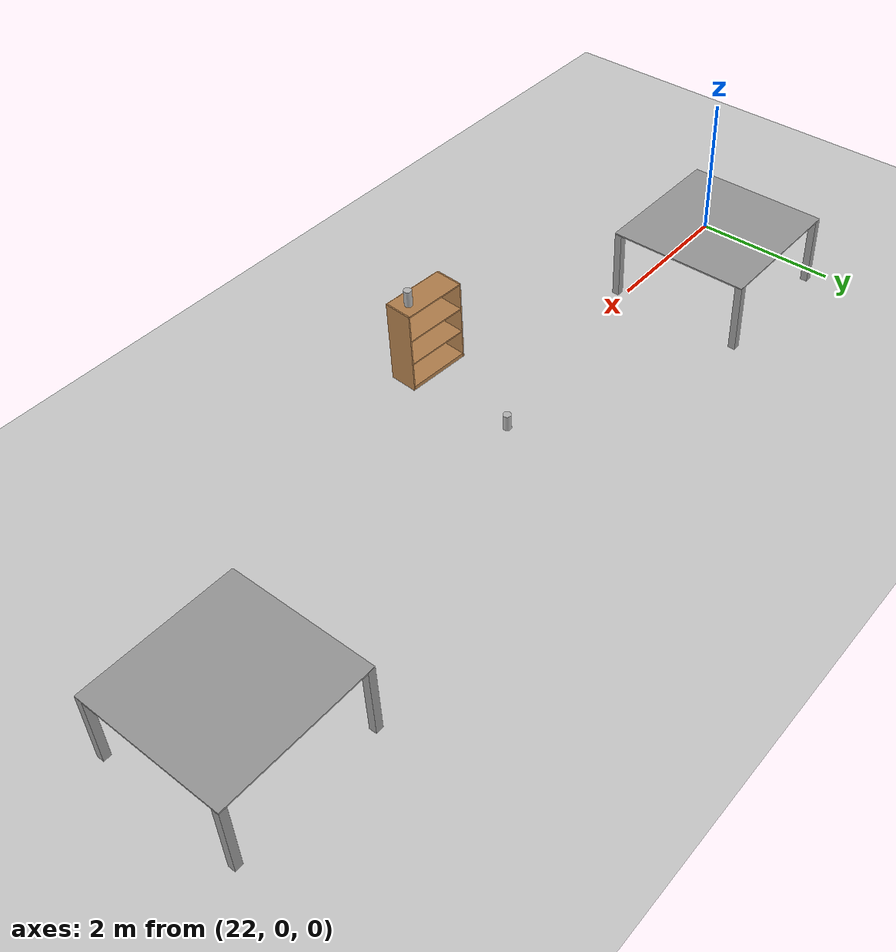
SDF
<sdf version="1.6">
 <world name="default">
  <model name="ground_plane">
   <static>1</static>
   <link name="link">
    <collision name="collision">
     <geometry><plane><normal>0 0 1</normal><size>100 100</size></plane></geometry>
     <surface>
      <contact><collide_bitmask>65535</collide_bitmask></contact>
      <friction><ode><mu>100</mu><mu2>50</mu2></ode></friction>
     </surface>
    </collision>
    <visual name="visual">
     <cast_shadows>0</cast_shadows>
     <geometry><plane><normal>0 0 1</normal><size>100 100</size></plane></geometry>
     <material>
      <script><uri>file://media/materials/scripts/gazebo.material</uri><name>Gazebo/Grey</name></script>
     </material>
    </visual>
   </link>
  </model>
  <model name="bookshelf">
   <static>1</static>
   <link name="link">
    <inertial><mass>1</mass></inertial>
    <collision name="back">
     <pose>0 0.005 0.6 0 -0 0</pose>
     <geometry><box><size>0.9 0.01 1.2</size></box></geometry>
    </collision>
    <visual name="visual1">
     <pose>0 0.005 0.6 0 -0 0</pose>
     <geometry><box><size>0.9 0.01 1.2</size></box></geometry>
     <material>
      <script><uri>file://media/materials/scripts/gazebo.material</uri><name>Gazebo/Wood</name></script>
     </material>
    </visual>
    <collision name="left_side">
     <pose>0.45 -0.195 0.6 0 -0 0</pose>
     <geometry><box><size>0.02 0.4 1.2</size></box></geometry>
    </collision>
    <visual name="visual2">
     <pose>0.45 -0.195 0.6 0 -0 0</pose>
     <geometry><box><size>0.02 0.4 1.2</size></box></geometry>
     <material>
      <script><uri>file://media/materials/scripts/gazebo.material</uri><name>Gazebo/Wood</name></script>
     </material>
    </visual>
    <collision name="right_side">
     <pose>-0.45 -0.195 0.6 0 -0 0</pose>
     <geometry><box><size>0.02 0.4 1.2</size></box></geometry>
    </collision>
    <visual name="visual3">
     <pose>-0.45 -0.195 0.6 0 -0 0</pose>
     <geometry><box><size>0.02 0.4 1.2</size></box></geometry>
     <material>
      <script><uri>file://media/materials/scripts/gazebo.material</uri><name>Gazebo/Wood</name></script>
     </material>
    </visual>
    <collision name="bottom">
     <pose>0 -0.195 0.03 0 -0 0</pose>
     <geometry><box><size>0.88 0.4 0.06</size></box></geometry>
    </collision>
    <visual name="visual4">
     <pose>0 -0.195 0.03 0 -0 0</pose>
     <geometry><box><size>0.88 0.4 0.06</size></box></geometry>
     <material>
      <script><uri>file://media/materials/scripts/gazebo.material</uri><name>Gazebo/Wood</name></script>
     </material>
    </visual>
    <collision name="top">
     <pose>0 -0.195 1.19 0 -0 0</pose>
     <geometry><box><size>0.88 0.4 0.02</size></box></geometry>
    </collision>
    <visual name="visual5">
     <pose>0 -0.195 1.19 0 -0 0</pose>
     <geometry><box><size>0.88 0.4 0.02</size></box></geometry>
     <material>
      <script><uri>file://media/materials/scripts/gazebo.material</uri><name>Gazebo/Wood</name></script>
     </material>
    </visual>
    <collision name="low_shelf">
     <pose>0 -0.195 0.43 0 -0 0</pose>
     <geometry><box><size>0.88 0.4 0.02</size></box></geometry>
    </collision>
    <visual name="visual6">
     <pose>0 -0.195 0.43 0 -0 0</pose>
     <geometry><box><size>0.88 0.4 0.02</size></box></geometry>
     <material>
      <script><uri>file://media/materials/scripts/gazebo.material</uri><name>Gazebo/Wood</name></script>
     </material>
    </visual>
    <collision name="high_shelf">
     <pose>0 -0.195 0.8 0 -0 0</pose>
     <geometry><box><size>0.88 0.4 0.02</size></box></geometry>
    </collision>
    <visual name="visual7">
     <pose>0 -0.195 0.8 0 -0 0</pose>
     <geometry><box><size>0.88 0.4 0.02</size></box></geometry>
     <material>
      <script><uri>file://media/materials/scripts/gazebo.material</uri><name>Gazebo/Wood</name></script>
     </material>
    </visual>
   </link>
   <pose>26.9058 -1.33422 0 0 -0 3.07905</pose>
  </model>
  <model name="beer">
   <link name="link">
    <pose>0 0 0.115 0 -0 0</pose>
    <inertial>
     <mass>0.39</mass>
     <inertia><ixx>0.00058</ixx><ixy>0</ixy><ixz>0</ixz><iyy>0.00058</iyy><iyz>0</iyz><izz>0.00019</izz></inertia>
    </inertial>
    <collision name="collision">
     <geometry><cylinder><radius>0.055</radius><length>0.23</length></cylinder></geometry>
    </collision>
    <visual name="visual">
     <geometry><cylinder><radius>0.055</radius><length>0.23</length></cylinder></geometry>
     <material>
      <script>
       <uri>model://beer/materials/scripts</uri>
       <uri>model://beer/materials/textures</uri>
       <name>Beer/Diffuse</name>
      </script>
     </material>
    </visual>
   </link>
   <pose>27.194 0.40875 -7e-06 -1e-06 -0 -7e-06</pose>
  </model>
  <model name="beer_0">
   <link name="link">
    <pose>0 0 0.115 0 -0 0</pose>
    <inertial>
     <mass>0.39</mass>
     <inertia><ixx>0.00058</ixx><ixy>0</ixy><ixz>0</ixz><iyy>0.00058</iyy><iyz>0</iyz><izz>0.00019</izz></inertia>
    </inertial>
    <collision name="collision">
     <geometry><cylinder><radius>0.055</radius><length>0.23</length></cylinder></geometry>
    </collision>
    <visual name="visual">
     <geometry><cylinder><radius>0.055</radius><length>0.23</length></cylinder></geometry>
     <material>
      <script>
       <uri>model://beer/materials/scripts</uri>
       <uri>model://beer/materials/textures</uri>
       <name>Beer/Diffuse</name>
      </script>
     </material>
    </visual>
   </link>
   <pose>27.1974 -1.14002 1.2 1e-06 -2.7e-05 5.3e-05</pose>
  </model>
  <model name="Table">
   <link name="link_0">
    <pose>2e-06 0 0.4 0 -0 0</pose>
    <inertial>
     <mass>1</mass>
     <inertia>
      <ixx>0.166667</ixx>
      <ixy>0</ixy>
      <ixz>0</ixz>
      <iyy>0.166667</iyy>
      <iyz>0</iyz>
      <izz>0.166667</izz>
     </inertia>
    </inertial>
    <visual name="visual">
     <geometry><box><size>2 2 0.02</size></box></geometry>
     <material>
      <lighting>1</lighting>
      <script><uri>file://media/materials/scripts/gazebo.material</uri><name>Gazebo/Grey</name></script>
      <shader type="pixel"><normal_map>__default__</normal_map></shader>
      <ambient>0.3 0.3 0.3 1</ambient>
      <diffuse>0.7 0.7 0.7 1</diffuse>
      <specular>0.01 0.01 0.01 1</specular>
      <emissive>0 0 0 1</emissive>
     </material>
    </visual>
    <collision name="collision">
     <geometry><box><size>2 2 0.02</size></box></geometry>
     <surface>
      <friction>
       <ode><mu>1</mu><mu2>1</mu2><fdir1>0 0 0</fdir1><slip1>0</slip1><slip2>0</slip2></ode>
       <torsional>
        <coefficient>1</coefficient>
        <patch_radius>0</patch_radius>
        <surface_radius>0</surface_radius>
        <use_patch_radius>1</use_patch_radius>
        <ode><slip>0</slip></ode>
       </torsional>
      </friction>
      <bounce><restitution_coefficient>0</restitution_coefficient><threshold>1e+06</threshold></bounce>
      <contact>
       <collide_without_contact>0</collide_without_contact>
       <collide_without_contact_bitmask>1</collide_without_contact_bitmask>
       <collide_bitmask>1</collide_bitmask>
       <ode>
        <soft_cfm>0</soft_cfm>
        <soft_erp>0.2</soft_erp>
        <kp>1e+13</kp>
        <kd>1</kd>
        <max_vel>0.01</max_vel>
        <min_depth>0</min_depth>
       </ode>
       <bullet>
        <split_impulse>1</split_impulse>
        <split_impulse_penetration_threshold>-0.01</split_impulse_penetration_threshold>
        <soft_cfm>0</soft_cfm>
        <soft_erp>0.2</soft_erp>
        <kp>1e+13</kp>
        <kd>1</kd>
       </bullet>
      </contact>
     </surface>
    </collision>
   </link>
   <link name="link_1">
    <pose>-0.949999 -0.95 -0.1 0 -0 0</pose>
    <inertial>
     <mass>1</mass>
     <inertia>
      <ixx>0.166667</ixx>
      <ixy>0</ixy>
      <ixz>0</ixz>
      <iyy>0.166667</iyy>
      <iyz>0</iyz>
      <izz>0.166667</izz>
     </inertia>
    </inertial>
    <visual name="visual">
     <geometry><box><size>0.1 0.1 1</size></box></geometry>
     <material>
      <lighting>1</lighting>
      <script><uri>file://media/materials/scripts/gazebo.material</uri><name>Gazebo/Grey</name></script>
      <shader type="pixel"><normal_map>__default__</normal_map></shader>
      <ambient>0.3 0.3 0.3 1</ambient>
      <diffuse>0.7 0.7 0.7 1</diffuse>
      <specular>0.01 0.01 0.01 1</specular>
      <emissive>0 0 0 1</emissive>
     </material>
    </visual>
    <collision name="collision">
     <geometry><box><size>0.1 0.1 1</size></box></geometry>
     <surface>
      <friction>
       <ode><mu>1</mu><mu2>1</mu2><fdir1>0 0 0</fdir1><slip1>0</slip1><slip2>0</slip2></ode>
       <torsional>
        <coefficient>1</coefficient>
        <patch_radius>0</patch_radius>
        <surface_radius>0</surface_radius>
        <use_patch_radius>1</use_patch_radius>
        <ode><slip>0</slip></ode>
       </torsional>
      </friction>
      <bounce><restitution_coefficient>0</restitution_coefficient><threshold>1e+06</threshold></bounce>
      <contact>
       <collide_without_contact>0</collide_without_contact>
       <collide_without_contact_bitmask>1</collide_without_contact_bitmask>
       <collide_bitmask>1</collide_bitmask>
       <ode>
        <soft_cfm>0</soft_cfm>
        <soft_erp>0.2</soft_erp>
        <kp>1e+13</kp>
        <kd>1</kd>
        <max_vel>0.01</max_vel>
        <min_depth>0</min_depth>
       </ode>
       <bullet>
        <split_impulse>1</split_impulse>
        <split_impulse_penetration_threshold>-0.01</split_impulse_penetration_threshold>
        <soft_cfm>0</soft_cfm>
        <soft_erp>0.2</soft_erp>
        <kp>1e+13</kp>
        <kd>1</kd>
       </bullet>
      </contact>
     </surface>
    </collision>
   </link>
   <link name="link_1_clone">
    <pose>0.950002 -0.95 -0.1 0 -0 0</pose>
    <inertial>
     <mass>1</mass>
     <inertia>
      <ixx>0.166667</ixx>
      <ixy>0</ixy>
      <ixz>0</ixz>
      <iyy>0.166667</iyy>
      <iyz>0</iyz>
      <izz>0.166667</izz>
     </inertia>
    </inertial>
    <visual name="visual">
     <geometry><box><size>0.1 0.1 1</size></box></geometry>
     <material>
      <lighting>1</lighting>
      <script><uri>file://media/materials/scripts/gazebo.material</uri><name>Gazebo/Grey</name></script>
      <shader type="pixel"><normal_map>__default__</normal_map></shader>
      <ambient>0.3 0.3 0.3 1</ambient>
      <diffuse>0.7 0.7 0.7 1</diffuse>
      <specular>0.01 0.01 0.01 1</specular>
      <emissive>0 0 0 1</emissive>
     </material>
    </visual>
    <collision name="collision">
     <geometry><box><size>0.1 0.1 1</size></box></geometry>
     <surface>
      <friction>
       <ode><mu>1</mu><mu2>1</mu2><fdir1>0 0 0</fdir1><slip1>0</slip1><slip2>0</slip2></ode>
       <torsional>
        <coefficient>1</coefficient>
        <patch_radius>0</patch_radius>
        <surface_radius>0</surface_radius>
        <use_patch_radius>1</use_patch_radius>
        <ode><slip>0</slip></ode>
       </torsional>
      </friction>
      <bounce><restitution_coefficient>0</restitution_coefficient><threshold>1e+06</threshold></bounce>
      <contact>
       <collide_without_contact>0</collide_without_contact>
       <collide_without_contact_bitmask>1</collide_without_contact_bitmask>
       <collide_bitmask>1</collide_bitmask>
       <ode>
        <soft_cfm>0</soft_cfm>
        <soft_erp>0.2</soft_erp>
        <kp>1e+13</kp>
        <kd>1</kd>
        <max_vel>0.01</max_vel>
        <min_depth>0</min_depth>
       </ode>
       <bullet>
        <split_impulse>1</split_impulse>
        <split_impulse_penetration_threshold>-0.01</split_impulse_penetration_threshold>
        <soft_cfm>0</soft_cfm>
        <soft_erp>0.2</soft_erp>
        <kp>1e+13</kp>
        <kd>1</kd>
       </bullet>
      </contact>
     </surface>
    </collision>
   </link>
   <link name="link_1_clone_0">
    <pose>-0.949999 0.95 -0.1 0 -0 0</pose>
    <inertial>
     <mass>1</mass>
     <inertia>
      <ixx>0.166667</ixx>
      <ixy>0</ixy>
      <ixz>0</ixz>
      <iyy>0.166667</iyy>
      <iyz>0</iyz>
      <izz>0.166667</izz>
     </inertia>
    </inertial>
    <visual name="visual">
     <geometry><box><size>0.1 0.1 1</size></box></geometry>
     <material>
      <lighting>1</lighting>
      <script><uri>file://media/materials/scripts/gazebo.material</uri><name>Gazebo/Grey</name></script>
      <shader type="pixel"><normal_map>__default__</normal_map></shader>
      <ambient>0.3 0.3 0.3 1</ambient>
      <diffuse>0.7 0.7 0.7 1</diffuse>
      <specular>0.01 0.01 0.01 1</specular>
      <emissive>0 0 0 1</emissive>
     </material>
    </visual>
    <collision name="collision">
     <geometry><box><size>0.1 0.1 1</size></box></geometry>
     <surface>
      <friction>
       <ode><mu>1</mu><mu2>1</mu2><fdir1>0 0 0</fdir1><slip1>0</slip1><slip2>0</slip2></ode>
       <torsional>
        <coefficient>1</coefficient>
        <patch_radius>0</patch_radius>
        <surface_radius>0</surface_radius>
        <use_patch_radius>1</use_patch_radius>
        <ode><slip>0</slip></ode>
       </torsional>
      </friction>
      <bounce><restitution_coefficient>0</restitution_coefficient><threshold>1e+06</threshold></bounce>
      <contact>
       <collide_without_contact>0</collide_without_contact>
       <collide_without_contact_bitmask>1</collide_without_contact_bitmask>
       <collide_bitmask>1</collide_bitmask>
       <ode>
        <soft_cfm>0</soft_cfm>
        <soft_erp>0.2</soft_erp>
        <kp>1e+13</kp>
        <kd>1</kd>
        <max_vel>0.01</max_vel>
        <min_depth>0</min_depth>
       </ode>
       <bullet>
        <split_impulse>1</split_impulse>
        <split_impulse_penetration_threshold>-0.01</split_impulse_penetration_threshold>
        <soft_cfm>0</soft_cfm>
        <soft_erp>0.2</soft_erp>
        <kp>1e+13</kp>
        <kd>1</kd>
       </bullet>
      </contact>
     </surface>
    </collision>
   </link>
   <link name="link_1_clone_1">
    <pose>0.950002 0.95 -0.1 0 -0 0</pose>
    <inertial>
     <mass>1</mass>
     <inertia>
      <ixx>0.166667</ixx>
      <ixy>0</ixy>
      <ixz>0</ixz>
      <iyy>0.166667</iyy>
      <iyz>0</iyz>
      <izz>0.166667</izz>
     </inertia>
    </inertial>
    <visual name="visual">
     <geometry><box><size>0.1 0.1 1</size></box></geometry>
     <material>
      <lighting>1</lighting>
      <script><uri>file://media/materials/scripts/gazebo.material</uri><name>Gazebo/Grey</name></script>
      <shader type="pixel"><normal_map>__default__</normal_map></shader>
      <ambient>0.3 0.3 0.3 1</ambient>
      <diffuse>0.7 0.7 0.7 1</diffuse>
      <specular>0.01 0.01 0.01 1</specular>
      <emissive>0 0 0 1</emissive>
     </material>
    </visual>
    <collision name="collision">
     <geometry><box><size>0.1 0.1 1</size></box></geometry>
     <surface>
      <friction>
       <ode><mu>1</mu><mu2>1</mu2><fdir1>0 0 0</fdir1><slip1>0</slip1><slip2>0</slip2></ode>
       <torsional>
        <coefficient>1</coefficient>
        <patch_radius>0</patch_radius>
        <surface_radius>0</surface_radius>
        <use_patch_radius>1</use_patch_radius>
        <ode><slip>0</slip></ode>
       </torsional>
      </friction>
      <bounce><restitution_coefficient>0</restitution_coefficient><threshold>1e+06</threshold></bounce>
      <contact>
       <collide_without_contact>0</collide_without_contact>
       <collide_without_contact_bitmask>1</collide_without_contact_bitmask>
       <collide_bitmask>1</collide_bitmask>
       <ode>
        <soft_cfm>0</soft_cfm>
        <soft_erp>0.2</soft_erp>
        <kp>1e+13</kp>
        <kd>1</kd>
        <max_vel>0.01</max_vel>
        <min_depth>0</min_depth>
       </ode>
       <bullet>
        <split_impulse>1</split_impulse>
        <split_impulse_penetration_threshold>-0.01</split_impulse_penetration_threshold>
        <soft_cfm>0</soft_cfm>
        <soft_erp>0.2</soft_erp>
        <kp>1e+13</kp>
        <kd>1</kd>
       </bullet>
      </contact>
     </surface>
    </collision>
   </link>
   <joint name="link_0_JOINT_2" type="revolute">
    <parent>link_0</parent>
    <child>link_1</child>
    <pose>0 0 0 0 -0.08 0</pose>
    <axis>
     <xyz>0 0 1</xyz>
     <use_parent_model_frame>0</use_parent_model_frame>
     <limit>
      <lower>-1.79769e+308</lower>
      <upper>1.79769e+308</upper>
      <effort>-1</effort>
      <velocity>-1</velocity>
     </limit>
     <dynamics>
      <spring_reference>0</spring_reference>
      <spring_stiffness>0</spring_stiffness>
      <damping>0</damping>
     </dynamics>
    </axis>
    <physics>
     <ode><limit><cfm>0</cfm><erp>0.2</erp></limit><suspension><cfm>0</cfm><erp>0.2</erp></suspension></ode>
    </physics>
   </joint>
   <joint name="link_0_JOINT_3" type="revolute">
    <parent>link_0</parent>
    <child>link_1_clone</child>
    <axis>
     <xyz>1 0 0</xyz>
     <use_parent_model_frame>0</use_parent_model_frame>
     <limit>
      <lower>-1.79769e+308</lower>
      <upper>1.79769e+308</upper>
      <effort>-1</effort>
      <velocity>-1</velocity>
     </limit>
     <dynamics>
      <spring_reference>0</spring_reference>
      <spring_stiffness>0</spring_stiffness>
      <damping>0</damping>
     </dynamics>
    </axis>
    <physics>
     <ode><limit><cfm>0</cfm><erp>0.2</erp></limit><suspension><cfm>0</cfm><erp>0.2</erp></suspension></ode>
    </physics>
   </joint>
   <joint name="link_0_JOINT_4" type="revolute">
    <parent>link_0</parent>
    <child>link_1_clone_1</child>
    <axis>
     <xyz>1 0 0</xyz>
     <use_parent_model_frame>0</use_parent_model_frame>
     <limit>
      <lower>-1.79769e+308</lower>
      <upper>1.79769e+308</upper>
      <effort>-1</effort>
      <velocity>-1</velocity>
     </limit>
     <dynamics>
      <spring_reference>0</spring_reference>
      <spring_stiffness>0</spring_stiffness>
      <damping>0</damping>
     </dynamics>
    </axis>
    <physics>
     <ode><limit><cfm>0</cfm><erp>0.2</erp></limit><suspension><cfm>0</cfm><erp>0.2</erp></suspension></ode>
    </physics>
   </joint>
   <joint name="link_0_JOINT_5" type="revolute">
    <parent>link_0</parent>
    <child>link_1_clone_0</child>
    <axis>
     <xyz>1 0 0</xyz>
     <use_parent_model_frame>0</use_parent_model_frame>
     <limit>
      <lower>-1.79769e+308</lower>
      <upper>1.79769e+308</upper>
      <effort>-1</effort>
      <velocity>-1</velocity>
     </limit>
     <dynamics>
      <spring_reference>0</spring_reference>
      <spring_stiffness>0</spring_stiffness>
      <damping>0</damping>
     </dynamics>
    </axis>
    <physics>
     <ode><limit><cfm>0</cfm><erp>0.2</erp></limit><suspension><cfm>0</cfm><erp>0.2</erp></suspension></ode>
    </physics>
   </joint>
   <static>0</static>
   <pose>32.3742 1.17546 0.600146 0.00012 -2e-06 -0.002159</pose>
  </model>
  <model name="Table_clone">
   <link name="link_0">
    <pose>2e-06 0 0.4 0 -0 0</pose>
    <inertial>
     <mass>1</mass>
     <inertia>
      <ixx>0.166667</ixx>
      <ixy>0</ixy>
      <ixz>0</ixz>
      <iyy>0.166667</iyy>
      <iyz>0</iyz>
      <izz>0.166667</izz>
     </inertia>
    </inertial>
    <visual name="visual">
     <geometry><box><size>2 2 0.02</size></box></geometry>
     <material>
      <lighting>1</lighting>
      <script><uri>file://media/materials/scripts/gazebo.material</uri><name>Gazebo/Grey</name></script>
      <shader type="pixel"><normal_map>__default__</normal_map></shader>
      <ambient>0.3 0.3 0.3 1</ambient>
      <diffuse>0.7 0.7 0.7 1</diffuse>
      <specular>0.01 0.01 0.01 1</specular>
      <emissive>0 0 0 1</emissive>
     </material>
    </visual>
    <collision name="collision">
     <geometry><box><size>2 2 0.02</size></box></geometry>
     <surface>
      <friction>
       <ode><mu>1</mu><mu2>1</mu2><fdir1>0 0 0</fdir1><slip1>0</slip1><slip2>0</slip2></ode>
       <torsional>
        <coefficient>1</coefficient>
        <patch_radius>0</patch_radius>
        <surface_radius>0</surface_radius>
        <use_patch_radius>1</use_patch_radius>
        <ode><slip>0</slip></ode>
       </torsional>
      </friction>
      <bounce><restitution_coefficient>0</restitution_coefficient><threshold>1e+06</threshold></bounce>
      <contact>
       <collide_without_contact>0</collide_without_contact>
       <collide_without_contact_bitmask>1</collide_without_contact_bitmask>
       <collide_bitmask>1</collide_bitmask>
       <ode>
        <soft_cfm>0</soft_cfm>
        <soft_erp>0.2</soft_erp>
        <kp>1e+13</kp>
        <kd>1</kd>
        <max_vel>0.01</max_vel>
        <min_depth>0</min_depth>
       </ode>
       <bullet>
        <split_impulse>1</split_impulse>
        <split_impulse_penetration_threshold>-0.01</split_impulse_penetration_threshold>
        <soft_cfm>0</soft_cfm>
        <soft_erp>0.2</soft_erp>
        <kp>1e+13</kp>
        <kd>1</kd>
       </bullet>
      </contact>
     </surface>
    </collision>
   </link>
   <link name="link_1">
    <pose>-0.949999 -0.95 -0.1 0 -0 0</pose>
    <inertial>
     <mass>1</mass>
     <inertia>
      <ixx>0.166667</ixx>
      <ixy>0</ixy>
      <ixz>0</ixz>
      <iyy>0.166667</iyy>
      <iyz>0</iyz>
      <izz>0.166667</izz>
     </inertia>
    </inertial>
    <visual name="visual">
     <geometry><box><size>0.1 0.1 1</size></box></geometry>
     <material>
      <lighting>1</lighting>
      <script><uri>file://media/materials/scripts/gazebo.material</uri><name>Gazebo/Grey</name></script>
      <shader type="pixel"><normal_map>__default__</normal_map></shader>
      <ambient>0.3 0.3 0.3 1</ambient>
      <diffuse>0.7 0.7 0.7 1</diffuse>
      <specular>0.01 0.01 0.01 1</specular>
      <emissive>0 0 0 1</emissive>
     </material>
    </visual>
    <collision name="collision">
     <geometry><box><size>0.1 0.1 1</size></box></geometry>
     <surface>
      <friction>
       <ode><mu>1</mu><mu2>1</mu2><fdir1>0 0 0</fdir1><slip1>0</slip1><slip2>0</slip2></ode>
       <torsional>
        <coefficient>1</coefficient>
        <patch_radius>0</patch_radius>
        <surface_radius>0</surface_radius>
        <use_patch_radius>1</use_patch_radius>
        <ode><slip>0</slip></ode>
       </torsional>
      </friction>
      <bounce><restitution_coefficient>0</restitution_coefficient><threshold>1e+06</threshold></bounce>
      <contact>
       <collide_without_contact>0</collide_without_contact>
       <collide_without_contact_bitmask>1</collide_without_contact_bitmask>
       <collide_bitmask>1</collide_bitmask>
       <ode>
        <soft_cfm>0</soft_cfm>
        <soft_erp>0.2</soft_erp>
        <kp>1e+13</kp>
        <kd>1</kd>
        <max_vel>0.01</max_vel>
        <min_depth>0</min_depth>
       </ode>
       <bullet>
        <split_impulse>1</split_impulse>
        <split_impulse_penetration_threshold>-0.01</split_impulse_penetration_threshold>
        <soft_cfm>0</soft_cfm>
        <soft_erp>0.2</soft_erp>
        <kp>1e+13</kp>
        <kd>1</kd>
       </bullet>
      </contact>
     </surface>
    </collision>
   </link>
   <link name="link_1_clone">
    <pose>0.950002 -0.95 -0.1 0 -0 0</pose>
    <inertial>
     <mass>1</mass>
     <inertia>
      <ixx>0.166667</ixx>
      <ixy>0</ixy>
      <ixz>0</ixz>
      <iyy>0.166667</iyy>
      <iyz>0</iyz>
      <izz>0.166667</izz>
     </inertia>
    </inertial>
    <visual name="visual">
     <geometry><box><size>0.1 0.1 1</size></box></geometry>
     <material>
      <lighting>1</lighting>
      <script><uri>file://media/materials/scripts/gazebo.material</uri><name>Gazebo/Grey</name></script>
      <shader type="pixel"><normal_map>__default__</normal_map></shader>
      <ambient>0.3 0.3 0.3 1</ambient>
      <diffuse>0.7 0.7 0.7 1</diffuse>
      <specular>0.01 0.01 0.01 1</specular>
      <emissive>0 0 0 1</emissive>
     </material>
    </visual>
    <collision name="collision">
     <geometry><box><size>0.1 0.1 1</size></box></geometry>
     <surface>
      <friction>
       <ode><mu>1</mu><mu2>1</mu2><fdir1>0 0 0</fdir1><slip1>0</slip1><slip2>0</slip2></ode>
       <torsional>
        <coefficient>1</coefficient>
        <patch_radius>0</patch_radius>
        <surface_radius>0</surface_radius>
        <use_patch_radius>1</use_patch_radius>
        <ode><slip>0</slip></ode>
       </torsional>
      </friction>
      <bounce><restitution_coefficient>0</restitution_coefficient><threshold>1e+06</threshold></bounce>
      <contact>
       <collide_without_contact>0</collide_without_contact>
       <collide_without_contact_bitmask>1</collide_without_contact_bitmask>
       <collide_bitmask>1</collide_bitmask>
       <ode>
        <soft_cfm>0</soft_cfm>
        <soft_erp>0.2</soft_erp>
        <kp>1e+13</kp>
        <kd>1</kd>
        <max_vel>0.01</max_vel>
        <min_depth>0</min_depth>
       </ode>
       <bullet>
        <split_impulse>1</split_impulse>
        <split_impulse_penetration_threshold>-0.01</split_impulse_penetration_threshold>
        <soft_cfm>0</soft_cfm>
        <soft_erp>0.2</soft_erp>
        <kp>1e+13</kp>
        <kd>1</kd>
       </bullet>
      </contact>
     </surface>
    </collision>
   </link>
   <link name="link_1_clone_0">
    <pose>-0.949999 0.95 -0.1 0 -0 0</pose>
    <inertial>
     <mass>1</mass>
     <inertia>
      <ixx>0.166667</ixx>
      <ixy>0</ixy>
      <ixz>0</ixz>
      <iyy>0.166667</iyy>
      <iyz>0</iyz>
      <izz>0.166667</izz>
     </inertia>
    </inertial>
    <visual name="visual">
     <geometry><box><size>0.1 0.1 1</size></box></geometry>
     <material>
      <lighting>1</lighting>
      <script><uri>file://media/materials/scripts/gazebo.material</uri><name>Gazebo/Grey</name></script>
      <shader type="pixel"><normal_map>__default__</normal_map></shader>
      <ambient>0.3 0.3 0.3 1</ambient>
      <diffuse>0.7 0.7 0.7 1</diffuse>
      <specular>0.01 0.01 0.01 1</specular>
      <emissive>0 0 0 1</emissive>
     </material>
    </visual>
    <collision name="collision">
     <geometry><box><size>0.1 0.1 1</size></box></geometry>
     <surface>
      <friction>
       <ode><mu>1</mu><mu2>1</mu2><fdir1>0 0 0</fdir1><slip1>0</slip1><slip2>0</slip2></ode>
       <torsional>
        <coefficient>1</coefficient>
        <patch_radius>0</patch_radius>
        <surface_radius>0</surface_radius>
        <use_patch_radius>1</use_patch_radius>
        <ode><slip>0</slip></ode>
       </torsional>
      </friction>
      <bounce><restitution_coefficient>0</restitution_coefficient><threshold>1e+06</threshold></bounce>
      <contact>
       <collide_without_contact>0</collide_without_contact>
       <collide_without_contact_bitmask>1</collide_without_contact_bitmask>
       <collide_bitmask>1</collide_bitmask>
       <ode>
        <soft_cfm>0</soft_cfm>
        <soft_erp>0.2</soft_erp>
        <kp>1e+13</kp>
        <kd>1</kd>
        <max_vel>0.01</max_vel>
        <min_depth>0</min_depth>
       </ode>
       <bullet>
        <split_impulse>1</split_impulse>
        <split_impulse_penetration_threshold>-0.01</split_impulse_penetration_threshold>
        <soft_cfm>0</soft_cfm>
        <soft_erp>0.2</soft_erp>
        <kp>1e+13</kp>
        <kd>1</kd>
       </bullet>
      </contact>
     </surface>
    </collision>
   </link>
   <link name="link_1_clone_1">
    <pose>0.950002 0.95 -0.1 0 -0 0</pose>
    <inertial>
     <mass>1</mass>
     <inertia>
      <ixx>0.166667</ixx>
      <ixy>0</ixy>
      <ixz>0</ixz>
      <iyy>0.166667</iyy>
      <iyz>0</iyz>
      <izz>0.166667</izz>
     </inertia>
    </inertial>
    <visual name="visual">
     <geometry><box><size>0.1 0.1 1</size></box></geometry>
     <material>
      <lighting>1</lighting>
      <script><uri>file://media/materials/scripts/gazebo.material</uri><name>Gazebo/Grey</name></script>
      <shader type="pixel"><normal_map>__default__</normal_map></shader>
      <ambient>0.3 0.3 0.3 1</ambient>
      <diffuse>0.7 0.7 0.7 1</diffuse>
      <specular>0.01 0.01 0.01 1</specular>
      <emissive>0 0 0 1</emissive>
     </material>
    </visual>
    <collision name="collision">
     <geometry><box><size>0.1 0.1 1</size></box></geometry>
     <surface>
      <friction>
       <ode><mu>1</mu><mu2>1</mu2><fdir1>0 0 0</fdir1><slip1>0</slip1><slip2>0</slip2></ode>
       <torsional>
        <coefficient>1</coefficient>
        <patch_radius>0</patch_radius>
        <surface_radius>0</surface_radius>
        <use_patch_radius>1</use_patch_radius>
        <ode><slip>0</slip></ode>
       </torsional>
      </friction>
      <bounce><restitution_coefficient>0</restitution_coefficient><threshold>1e+06</threshold></bounce>
      <contact>
       <collide_without_contact>0</collide_without_contact>
       <collide_without_contact_bitmask>1</collide_without_contact_bitmask>
       <collide_bitmask>1</collide_bitmask>
       <ode>
        <soft_cfm>0</soft_cfm>
        <soft_erp>0.2</soft_erp>
        <kp>1e+13</kp>
        <kd>1</kd>
        <max_vel>0.01</max_vel>
        <min_depth>0</min_depth>
       </ode>
       <bullet>
        <split_impulse>1</split_impulse>
        <split_impulse_penetration_threshold>-0.01</split_impulse_penetration_threshold>
        <soft_cfm>0</soft_cfm>
        <soft_erp>0.2</soft_erp>
        <kp>1e+13</kp>
        <kd>1</kd>
       </bullet>
      </contact>
     </surface>
    </collision>
   </link>
   <joint name="link_0_JOINT_2" type="revolute">
    <parent>link_0</parent>
    <child>link_1</child>
    <pose>0 0 0 0 -0.08 0</pose>
    <axis>
     <xyz>0 0 1</xyz>
     <use_parent_model_frame>0</use_parent_model_frame>
     <limit>
      <lower>-1.79769e+308</lower>
      <upper>1.79769e+308</upper>
      <effort>-1</effort>
      <velocity>-1</velocity>
     </limit>
     <dynamics>
      <spring_reference>0</spring_reference>
      <spring_stiffness>0</spring_stiffness>
      <damping>0</damping>
     </dynamics>
    </axis>
    <physics>
     <ode><limit><cfm>0</cfm><erp>0.2</erp></limit><suspension><cfm>0</cfm><erp>0.2</erp></suspension></ode>
    </physics>
   </joint>
   <joint name="link_0_JOINT_3" type="revolute">
    <parent>link_0</parent>
    <child>link_1_clone</child>
    <axis>
     <xyz>1 0 0</xyz>
     <use_parent_model_frame>0</use_parent_model_frame>
     <limit>
      <lower>-1.79769e+308</lower>
      <upper>1.79769e+308</upper>
      <effort>-1</effort>
      <velocity>-1</velocity>
     </limit>
     <dynamics>
      <spring_reference>0</spring_reference>
      <spring_stiffness>0</spring_stiffness>
      <damping>0</damping>
     </dynamics>
    </axis>
    <physics>
     <ode><limit><cfm>0</cfm><erp>0.2</erp></limit><suspension><cfm>0</cfm><erp>0.2</erp></suspension></ode>
    </physics>
   </joint>
   <joint name="link_0_JOINT_4" type="revolute">
    <parent>link_0</parent>
    <child>link_1_clone_1</child>
    <axis>
     <xyz>1 0 0</xyz>
     <use_parent_model_frame>0</use_parent_model_frame>
     <limit>
      <lower>-1.79769e+308</lower>
      <upper>1.79769e+308</upper>
      <effort>-1</effort>
      <velocity>-1</velocity>
     </limit>
     <dynamics>
      <spring_reference>0</spring_reference>
      <spring_stiffness>0</spring_stiffness>
      <damping>0</damping>
     </dynamics>
    </axis>
    <physics>
     <ode><limit><cfm>0</cfm><erp>0.2</erp></limit><suspension><cfm>0</cfm><erp>0.2</erp></suspension></ode>
    </physics>
   </joint>
   <joint name="link_0_JOINT_5" type="revolute">
    <parent>link_0</parent>
    <child>link_1_clone_0</child>
    <axis>
     <xyz>1 0 0</xyz>
     <use_parent_model_frame>0</use_parent_model_frame>
     <limit>
      <lower>-1.79769e+308</lower>
      <upper>1.79769e+308</upper>
      <effort>-1</effort>
      <velocity>-1</velocity>
     </limit>
     <dynamics>
      <spring_reference>0</spring_reference>
      <spring_stiffness>0</spring_stiffness>
      <damping>0</damping>
     </dynamics>
    </axis>
    <physics>
     <ode><limit><cfm>0</cfm><erp>0.2</erp></limit><suspension><cfm>0</cfm><erp>0.2</erp></suspension></ode>
    </physics>
   </joint>
   <static>0</static>
   <pose>23.1575 0.844322 0.6002 0.000198 1e-05 -0.00498</pose>
  </model>
 </world>
</sdf>
